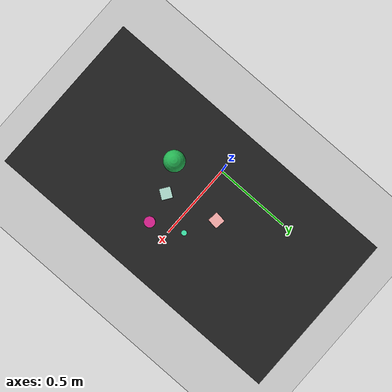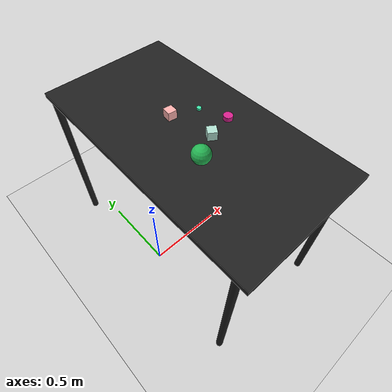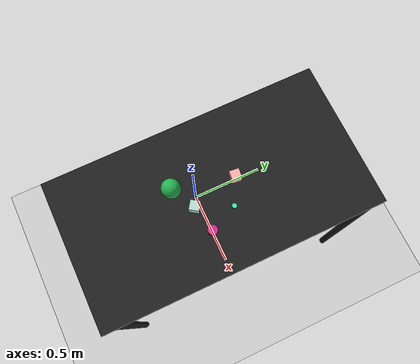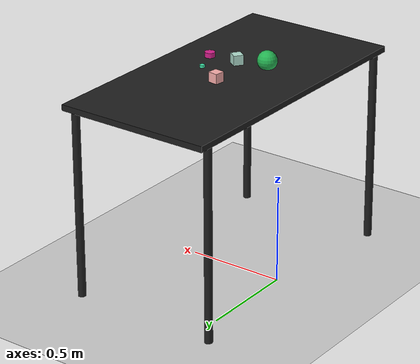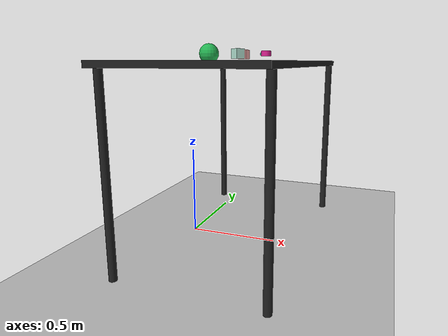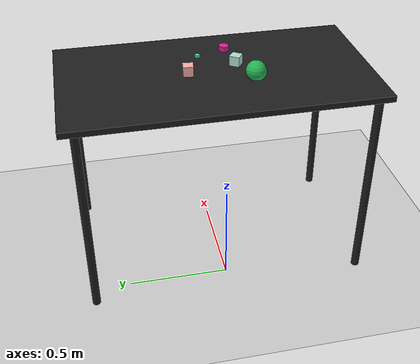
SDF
<?xml version="1.0" ?>
<sdf version="1.6">
  <world name="arm_world">
    <plugin filename="gz-sim-physics-system" name="gz::sim::systems::Physics">
      <engine>
        <filename>libgz-physics-bullet-featherstone-plugin.so</filename>
      </engine>
    </plugin>
    <plugin filename="gz-sim-user-commands-system" name="gz::sim::systems::UserCommands"/>
    <plugin filename="gz-sim-scene-broadcaster-system" name="gz::sim::systems::SceneBroadcaster"/>
    <plugin filename="gz-sim-sensors-system" name="gz::sim::systems::Sensors">
      <render_engine>ogre2</render_engine>
    </plugin>
    <gravity>0.0 0.0 -9.8</gravity>
    <scene>
      <shadows>false</shadows>
    </scene>
    <gui>
      <camera name="user_camera">
        <pose>0.75 -0.75 1.4 0 0.29 2.21</pose>
      </camera>
    </gui>
    <include>
      <uri>https://fuel.gazebosim.org/1.0/OpenRobotics/models/Sun</uri>
    </include>
    <model name="table">
      <static>true</static>
      <include>
        <uri>model://table</uri>
      </include>
      <pose>0.29 0 0 0 0 1.5708</pose>
    </model>
    <model name="ground_plane">
      <static>true</static>
      <link name="link">
        <collision name="collision">
          <geometry>
            <plane>
              <normal>0 0 1</normal>
            </plane>
          </geometry>
          <surface>
            <friction>
              <ode>
                <mu>1.0</mu>
                <mu2>1.0</mu2>
              </ode>
            </friction>
          </surface>
        </collision>
        <visual name="visual">
          <geometry>
            <plane>
              <normal>0 0 1</normal>
              <size>100 100</size>
            </plane>
          </geometry>
          <material>
            <ambient>0.8 0.8 0.8 1</ambient>
            <diffuse>0.8 0.8 0.8 1</diffuse>
            <specular>0.8 0.8 0.8 1</specular>
          </material>
        </visual>
      </link>
    </model>
    <model name="cylinder_m_0">
      <pose>0.467 -0.084 1.05 0 0 5.88</pose>
      <link name="cylinder_m_0_link">
        <collision name="cylinder_m_0_collision">
          <geometry>
            <cylinder>
              <radius>0.025</radius>
              <length>0.025</length>
            </cylinder>
          </geometry>
        </collision>
        <visual name="cylinder_m_0_visual">
          <geometry>
            <cylinder>
              <radius>0.025</radius>
              <length>0.025</length>
            </cylinder>
          </geometry>
          <material>
            <ambient>0.84 0.12 0.55 1</ambient>
            <diffuse>0.84 0.12 0.55 1</diffuse>
          </material>
        </visual>
        <velocity_decay>
          <linear>1</linear>
          <angular>1</angular>
        </velocity_decay>
      </link>
    </model>
    <model name="cube_m_1">
      <pose>0.326 -0.112 1.05 0 0 4.11</pose>
      <link name="cube_m_1_link">
        <collision name="cube_m_1_collision">
          <geometry>
            <box>
              <size>0.05 0.05 0.05</size>
            </box>
          </geometry>
        </collision>
        <visual name="cube_m_1_visual">
          <geometry>
            <box>
              <size>0.05 0.05 0.05</size>
            </box>
          </geometry>
          <material>
            <ambient>0.69 0.87 0.81 1</ambient>
            <diffuse>0.69 0.87 0.81 1</diffuse>
          </material>
        </visual>
        <velocity_decay>
          <linear>1</linear>
          <angular>1</angular>
        </velocity_decay>
      </link>
    </model>
    <model name="sphere_l_2">
      <pose>0.195 -0.179 1.05 0 0 4.07</pose>
      <link name="sphere_l_2_link">
        <collision name="sphere_l_2_collision">
          <geometry>
            <sphere>
              <radius>0.05</radius>
            </sphere>
          </geometry>
        </collision>
        <visual name="sphere_l_2_visual">
          <geometry>
            <sphere>
              <radius>0.05</radius>
            </sphere>
          </geometry>
          <material>
            <ambient>0.14 0.7 0.32 1</ambient>
            <diffuse>0.14 0.7 0.32 1</diffuse>
          </material>
        </visual>
        <velocity_decay>
          <linear>1</linear>
          <angular>1</angular>
        </velocity_decay>
      </link>
    </model>
    <model name="cylinder_s_3">
      <pose>0.404 0.061 1.05 0 0 3.9</pose>
      <link name="cylinder_s_3_link">
        <collision name="cylinder_s_3_collision">
          <geometry>
            <cylinder>
              <radius>0.0125</radius>
              <length>0.0125</length>
            </cylinder>
          </geometry>
        </collision>
        <visual name="cylinder_s_3_visual">
          <geometry>
            <cylinder>
              <radius>0.0125</radius>
              <length>0.0125</length>
            </cylinder>
          </geometry>
          <material>
            <ambient>0.24 0.9 0.66 1</ambient>
            <diffuse>0.24 0.9 0.66 1</diffuse>
          </material>
        </visual>
        <velocity_decay>
          <linear>1</linear>
          <angular>1</angular>
        </velocity_decay>
      </link>
    </model>
    <model name="cube_m_4">
      <pose>0.27 0.131 1.05 0 0 4.59</pose>
      <link name="cube_m_4_link">
        <collision name="cube_m_4_collision">
          <geometry>
            <box>
              <size>0.05 0.05 0.05</size>
            </box>
          </geometry>
        </collision>
        <visual name="cube_m_4_visual">
          <geometry>
            <box>
              <size>0.05 0.05 0.05</size>
            </box>
          </geometry>
          <material>
            <ambient>0.98 0.68 0.67 1</ambient>
            <diffuse>0.98 0.68 0.67 1</diffuse>
          </material>
        </visual>
        <velocity_decay>
          <linear>1</linear>
          <angular>1</angular>
        </velocity_decay>
      </link>
    </model>
  </world>
</sdf>

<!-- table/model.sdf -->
<sdf version="1.5">
  <model name="table">
    <static>true</static>
    <link name="link">
      <collision name="surface">
        <pose>0 0 1.0 0 0 0</pose>
        <geometry>
          <box>
            <size>1.5 0.8 0.03</size>
          </box>
        </geometry>
        <surface>
          <friction>
            <ode>
              <mu>0.6</mu>
              <mu2>0.6</mu2>
            </ode>
          </friction>
        </surface>
      </collision>
      <visual name="surface">
        <pose>0 0 1.0 0 0 0</pose>
        <geometry>
          <box>
            <size>1.5 0.8 0.03</size>
          </box>
        </geometry>
        <material>
          <script>
            <uri>file://media/materials/scripts/gazebo.material</uri>
            <name>Gazebo/Black</name>
          </script>
        </material>
      </visual>
      <collision name="front_left_leg">
        <pose>0.68 0.38 0.5 0 0 0</pose>
        <geometry>
          <cylinder>
            <radius>0.02</radius>
            <length>1.0</length>
          </cylinder>
        </geometry>
      </collision>
      <visual name="front_left_leg">
        <pose>0.68 0.38 0.5 0 0 0</pose>
        <geometry>
          <cylinder>
            <radius>0.02</radius>
            <length>1.0</length>
          </cylinder>
        </geometry>
        <material>
          <script>
            <uri>file://media/materials/scripts/gazebo.material</uri>
            <name>Gazebo/Black</name>
          </script>
        </material>
      </visual>
      <collision name="front_right_leg">
        <pose>0.68 -0.38 0.5 0 0 0</pose>
        <geometry>
          <cylinder>
            <radius>0.02</radius>
            <length>1.0</length>
          </cylinder>
        </geometry>
      </collision>
      <visual name="front_right_leg">
        <pose>0.68 -0.38 0.5 0 0 0</pose>
        <geometry>
          <cylinder>
            <radius>0.02</radius>
            <length>1.0</length>
          </cylinder>
        </geometry>
        <material>
          <script>
            <uri>file://media/materials/scripts/gazebo.material</uri>
            <name>Gazebo/Black</name>
          </script>
        </material>
      </visual>
      <collision name="back_right_leg">
        <pose>-0.68 -0.38 0.5 0 0 0</pose>
        <geometry>
          <cylinder>
            <radius>0.02</radius>
            <length>1.0</length>
          </cylinder>
        </geometry>
      </collision>
      <visual name="back_right_leg">
        <pose>-0.68 -0.38 0.5 0 0 0</pose>
        <geometry>
          <cylinder>
            <radius>0.02</radius>
            <length>1.0</length>
          </cylinder>
        </geometry>
        <material>
          <script>
            <uri>file://media/materials/scripts/gazebo.material</uri>
            <name>Gazebo/Black</name>
          </script>
        </material>
      </visual>
      <collision name="back_left_leg">
        <pose>-0.68 0.38 0.5 0 0 0</pose>
        <geometry>
          <cylinder>
            <radius>0.02</radius>
            <length>1.0</length>
          </cylinder>
        </geometry>
      </collision>
      <visual name="back_left_leg">
        <pose>-0.68 0.38 0.5 0 0 0</pose>
        <geometry>
          <cylinder>
            <radius>0.02</radius>
            <length>1.0</length>
          </cylinder>
        </geometry>
        <material>
          <script>
            <uri>file://media/materials/scripts/gazebo.material</uri>
            <name>Gazebo/Black</name>
          </script>
        </material>
      </visual>
    </link>
  </model>
</sdf>
